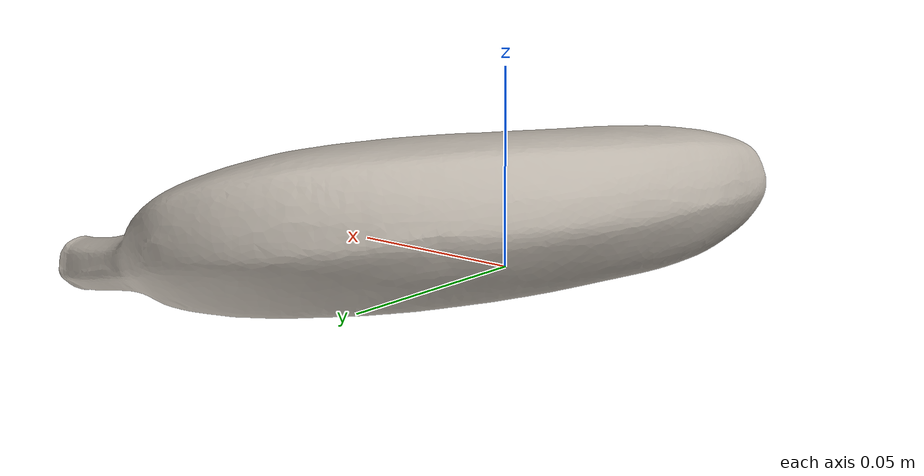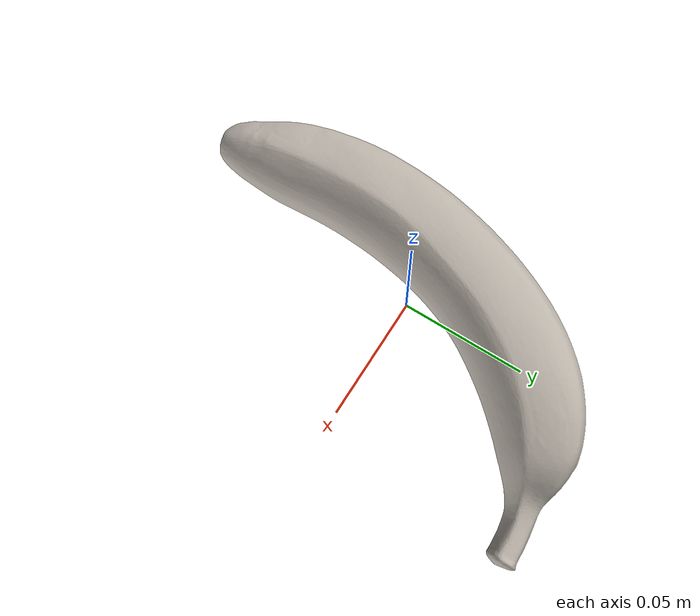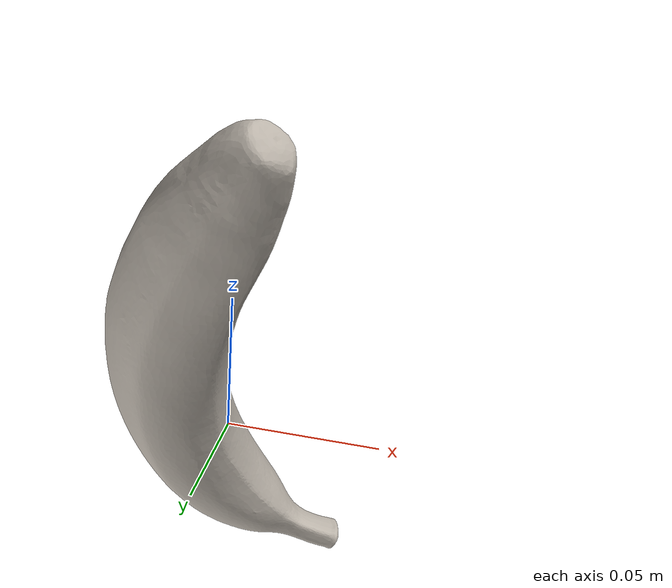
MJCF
<?xml version='1.0' encoding='utf-8'?>
<mujoco model="textured">
  <default>
    <default class="visual">
      <geom group="2" type="mesh" contype="0" conaffinity="0" />
    </default>
    <default class="collision">
      <geom group="3" type="mesh" />
    </default>
  </default>
  <asset>
    <texture type="2d" name="bottle" file="texture_map.png" />
    <material name="bottle" texture="bottle" specular="0.5" shininess="0.5" />
    <mesh file="textured.obj" name="bottle" />
    <mesh file="textured_collision_0.obj" name="bottle_0" />
    <mesh file="textured_collision_1.obj" name="bottle_1" />
    <mesh file="textured_collision_2.obj" name="bottle_2" />
    <mesh file="textured_collision_3.obj" name="bottle_3" />
    <mesh file="textured_collision_4.obj" name="bottle_4" />
    <mesh file="textured_collision_5.obj" name="bottle_5" />
    <mesh file="textured_collision_6.obj" name="bottle_6" />
    <mesh file="textured_collision_7.obj" name="bottle_7" />
    <mesh file="textured_collision_8.obj" name="bottle_8" />
    <mesh file="textured_collision_9.obj" name="bottle_9" />
    <mesh file="textured_collision_10.obj" name="bottle_10" />
    <mesh file="textured_collision_11.obj" name="bottle_11" />
    <mesh file="textured_collision_12.obj" name="bottle_12" />
    <mesh file="textured_collision_13.obj" name="bottle_13" />
    <mesh file="textured_collision_14.obj" name="bottle_14" />
    <mesh file="textured_collision_15.obj" name="bottle_15" />
    <mesh file="textured_collision_16.obj" name="bottle_16" />
    <mesh file="textured_collision_17.obj" name="bottle_17" />
    <mesh file="textured_collision_18.obj" name="bottle_18" />
    <mesh file="textured_collision_19.obj" name="bottle_19" />
    <mesh file="textured_collision_20.obj" name="bottle_20" />
    <mesh file="textured_collision_21.obj" name="bottle_21" />
    <mesh file="textured_collision_22.obj" name="bottle_22" />
    <mesh file="textured_collision_23.obj" name="bottle_23" />
    <mesh file="textured_collision_24.obj" name="bottle_24" />
    <mesh file="textured_collision_25.obj" name="bottle_25" />
    <mesh file="textured_collision_26.obj" name="bottle_26" />
    <mesh file="textured_collision_27.obj" name="bottle_27" />
    <mesh file="textured_collision_28.obj" name="bottle_28" />
    <mesh file="textured_collision_29.obj" name="bottle_29" />
    <mesh file="textured_collision_30.obj" name="bottle_30" />
    <mesh file="textured_collision_31.obj" name="bottle_31" />
    <mesh file="textured_collision_32.obj" name="bottle_32" />
    <mesh file="textured_collision_33.obj" name="bottle_33" />
    <mesh file="textured_collision_34.obj" name="bottle_34" />
    <mesh file="textured_collision_35.obj" name="bottle_35" />
    <mesh file="textured_collision_36.obj" name="bottle_36" />
    <mesh file="textured_collision_37.obj" name="bottle_37" />
    <mesh file="textured_collision_38.obj" name="bottle_38" />
    <mesh file="textured_collision_39.obj" name="bottle_39" />
    <mesh file="textured_collision_40.obj" name="bottle_40" />
    <mesh file="textured_collision_41.obj" name="bottle_41" />
    <mesh file="textured_collision_42.obj" name="bottle_42" />
    <mesh file="textured_collision_43.obj" name="bottle_43" />
    <mesh file="textured_collision_44.obj" name="bottle_44" />
    <mesh file="textured_collision_45.obj" name="bottle_45" />
    <mesh file="textured_collision_46.obj" name="bottle_46" />
    <mesh file="textured_collision_47.obj" name="bottle_47" />
    <mesh file="textured_collision_48.obj" name="bottle_48" />
    <mesh file="textured_collision_49.obj" name="bottle_49" />
    <mesh file="textured_collision_50.obj" name="bottle_50" />
    <mesh file="textured_collision_51.obj" name="bottle_51" />
    <mesh file="textured_collision_52.obj" name="bottle_52" />
    <mesh file="textured_collision_53.obj" name="bottle_53" />
    <mesh file="textured_collision_54.obj" name="bottle_54" />
    <mesh file="textured_collision_55.obj" name="bottle_55" />
    <mesh file="textured_collision_56.obj" name="bottle_56" />
    <mesh file="textured_collision_57.obj" name="bottle_57" />
    <mesh file="textured_collision_58.obj" name="bottle_58" />
    <mesh file="textured_collision_59.obj" name="bottle_59" />
    <mesh file="textured_collision_60.obj" name="bottle_60" />
    <mesh file="textured_collision_61.obj" name="bottle_61" />
    <mesh file="textured_collision_62.obj" name="bottle_62" />
    <mesh file="textured_collision_63.obj" name="bottle_63" />
  </asset>
  <worldbody>
    <body name="bottle">
      <geom material="bottle" mesh="bottle" class="visual" />
      <geom mesh="bottle_0" class="collision" />
      <geom mesh="bottle_1" class="collision" />
      <geom mesh="bottle_2" class="collision" />
      <geom mesh="bottle_3" class="collision" />
      <geom mesh="bottle_4" class="collision" />
      <geom mesh="bottle_5" class="collision" />
      <geom mesh="bottle_6" class="collision" />
      <geom mesh="bottle_7" class="collision" />
      <geom mesh="bottle_8" class="collision" />
      <geom mesh="bottle_9" class="collision" />
      <geom mesh="bottle_10" class="collision" />
      <geom mesh="bottle_11" class="collision" />
      <geom mesh="bottle_12" class="collision" />
      <geom mesh="bottle_13" class="collision" />
      <geom mesh="bottle_14" class="collision" />
      <geom mesh="bottle_15" class="collision" />
      <geom mesh="bottle_16" class="collision" />
      <geom mesh="bottle_17" class="collision" />
      <geom mesh="bottle_18" class="collision" />
      <geom mesh="bottle_19" class="collision" />
      <geom mesh="bottle_20" class="collision" />
      <geom mesh="bottle_21" class="collision" />
      <geom mesh="bottle_22" class="collision" />
      <geom mesh="bottle_23" class="collision" />
      <geom mesh="bottle_24" class="collision" />
      <geom mesh="bottle_25" class="collision" />
      <geom mesh="bottle_26" class="collision" />
      <geom mesh="bottle_27" class="collision" />
      <geom mesh="bottle_28" class="collision" />
      <geom mesh="bottle_29" class="collision" />
      <geom mesh="bottle_30" class="collision" />
      <geom mesh="bottle_31" class="collision" />
      <geom mesh="bottle_32" class="collision" />
      <geom mesh="bottle_33" class="collision" />
      <geom mesh="bottle_34" class="collision" />
      <geom mesh="bottle_35" class="collision" />
      <geom mesh="bottle_36" class="collision" />
      <geom mesh="bottle_37" class="collision" />
      <geom mesh="bottle_38" class="collision" />
      <geom mesh="bottle_39" class="collision" />
      <geom mesh="bottle_40" class="collision" />
      <geom mesh="bottle_41" class="collision" />
      <geom mesh="bottle_42" class="collision" />
      <geom mesh="bottle_43" class="collision" />
      <geom mesh="bottle_44" class="collision" />
      <geom mesh="bottle_45" class="collision" />
      <geom mesh="bottle_46" class="collision" />
      <geom mesh="bottle_47" class="collision" />
      <geom mesh="bottle_48" class="collision" />
      <geom mesh="bottle_49" class="collision" />
      <geom mesh="bottle_50" class="collision" />
      <geom mesh="bottle_51" class="collision" />
      <geom mesh="bottle_52" class="collision" />
      <geom mesh="bottle_53" class="collision" />
      <geom mesh="bottle_54" class="collision" />
      <geom mesh="bottle_55" class="collision" />
      <geom mesh="bottle_56" class="collision" />
      <geom mesh="bottle_57" class="collision" />
      <geom mesh="bottle_58" class="collision" />
      <geom mesh="bottle_59" class="collision" />
      <geom mesh="bottle_60" class="collision" />
      <geom mesh="bottle_61" class="collision" />
      <geom mesh="bottle_62" class="collision" />
      <geom mesh="bottle_63" class="collision" />
    </body>
  </worldbody>
</mujoco>
